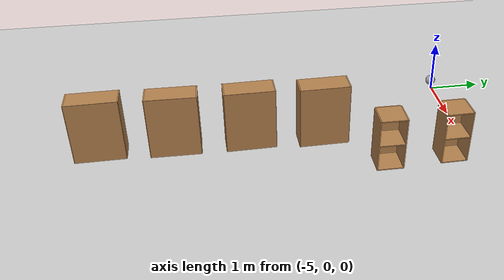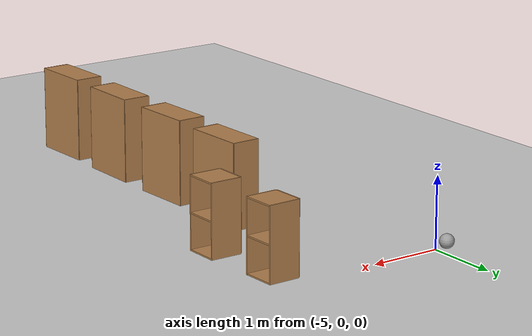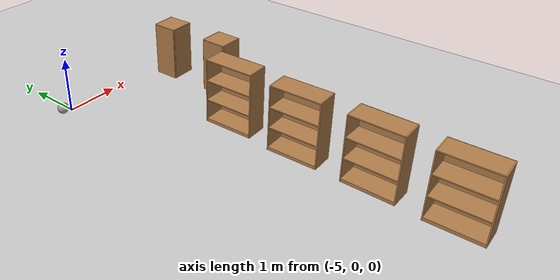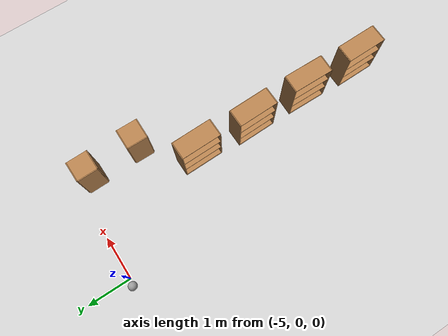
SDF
<sdf version="1.6">
 <world name="default">
  <model name="ground_plane">
   <static>1</static>
   <link name="link">
    <collision name="collision">
     <geometry><plane><normal>0 0 1</normal><size>100 100</size></plane></geometry>
     <surface>
      <contact><collide_bitmask>65535</collide_bitmask></contact>
      <friction><ode><mu>100</mu><mu2>50</mu2></ode></friction>
     </surface>
    </collision>
    <visual name="visual">
     <cast_shadows>0</cast_shadows>
     <geometry><plane><normal>0 0 1</normal><size>100 100</size></plane></geometry>
     <material>
      <script><uri>file://media/materials/scripts/gazebo.material</uri><name>Gazebo/Grey</name></script>
     </material>
    </visual>
   </link>
  </model>
  <model name="cabinet">
   <static>1</static>
   <link name="cabinet_bottom_plate">
    <inertial>
     <pose>0 0 -1 0 -0 0</pose>
     <inertia><ixx>2.05</ixx><ixy>0</ixy><ixz>0</ixz><iyy>2.05</iyy><iyz>0</iyz><izz>2.05</izz></inertia>
     <mass>25</mass>
    </inertial>
    <collision name="cabinet_bottom_plate_geom">
     <pose>0 0 0.01 0 -0 0</pose>
     <geometry><box><size>0.45 0.45 0.02</size></box></geometry>
    </collision>
    <visual name="cabinet_bottom_plate_geom_visual">
     <pose>0 0 0.01 0 -0 0</pose>
     <geometry><box><size>0.45 0.45 0.02</size></box></geometry>
     <material>
      <script><uri>file://media/materials/scripts/gazebo.material</uri><name>Gazebo/Wood</name></script>
     </material>
    </visual>
    <collision name="cabinet_bottom_plate_geom_cabinet_back_plate">
     <pose>0.235 0 0.51 0 -0 0</pose>
     <geometry><box><size>0.02 0.45 1.02</size></box></geometry>
    </collision>
    <visual name="cabinet_bottom_plate_geom_cabinet_back_plate_visual">
     <pose>0.235 0 0.51 0 -0 0</pose>
     <geometry><box><size>0.02 0.45 1.02</size></box></geometry>
     <material>
      <script><uri>file://media/materials/scripts/gazebo.material</uri><name>Gazebo/Wood</name></script>
     </material>
    </visual>
    <collision name="cabinet_bottom_plate_geom_cabinet_left_plate">
     <pose>0 0.235 0.51 0 -0 0</pose>
     <geometry><box><size>0.45 0.02 1.02</size></box></geometry>
    </collision>
    <visual name="cabinet_bottom_plate_geom_cabinet_left_plate_visual">
     <pose>0 0.235 0.51 0 -0 0</pose>
     <geometry><box><size>0.45 0.02 1.02</size></box></geometry>
     <material>
      <script><uri>file://media/materials/scripts/gazebo.material</uri><name>Gazebo/Wood</name></script>
     </material>
    </visual>
    <collision name="cabinet_bottom_plate_geom_cabinet_middle_plate">
     <pose>0 0 0.51 0 -0 0</pose>
     <geometry><box><size>0.45 0.45 0.02</size></box></geometry>
    </collision>
    <visual name="cabinet_bottom_plate_geom_cabinet_middle_plate_visual">
     <pose>0 0 0.51 0 -0 0</pose>
     <geometry><box><size>0.45 0.45 0.02</size></box></geometry>
     <material>
      <script><uri>file://media/materials/scripts/gazebo.material</uri><name>Gazebo/Wood</name></script>
     </material>
    </visual>
    <collision name="cabinet_bottom_plate_geom_cabinet_right_plate">
     <pose>0 -0.235 0.51 0 -0 0</pose>
     <geometry><box><size>0.45 0.02 1.02</size></box></geometry>
    </collision>
    <visual name="cabinet_bottom_plate_geom_cabinet_right_plate_visual">
     <pose>0 -0.235 0.51 0 -0 0</pose>
     <geometry><box><size>0.45 0.02 1.02</size></box></geometry>
     <material>
      <script><uri>file://media/materials/scripts/gazebo.material</uri><name>Gazebo/Wood</name></script>
     </material>
    </visual>
    <collision name="cabinet_bottom_plate_geom_cabinet_top_plate">
     <pose>0 0 1.01 0 -0 0</pose>
     <geometry><box><size>0.45 0.45 0.02</size></box></geometry>
    </collision>
    <visual name="cabinet_bottom_plate_geom_cabinet_top_plate_visual">
     <pose>0 0 1.01 0 -0 0</pose>
     <geometry><box><size>0.45 0.45 0.02</size></box></geometry>
     <material>
      <script><uri>file://media/materials/scripts/gazebo.material</uri><name>Gazebo/Wood</name></script>
     </material>
    </visual>
   </link>
   <pose>-2.66725 -1.57685 0 0 -0 3.13621</pose>
  </model>
  <model name="cabinet_0">
   <static>1</static>
   <link name="cabinet_bottom_plate">
    <inertial>
     <pose>0 0 -1 0 -0 0</pose>
     <inertia><ixx>2.05</ixx><ixy>0</ixy><ixz>0</ixz><iyy>2.05</iyy><iyz>0</iyz><izz>2.05</izz></inertia>
     <mass>25</mass>
    </inertial>
    <collision name="cabinet_bottom_plate_geom">
     <pose>0 0 0.01 0 -0 0</pose>
     <geometry><box><size>0.45 0.45 0.02</size></box></geometry>
    </collision>
    <visual name="cabinet_bottom_plate_geom_visual">
     <pose>0 0 0.01 0 -0 0</pose>
     <geometry><box><size>0.45 0.45 0.02</size></box></geometry>
     <material>
      <script><uri>file://media/materials/scripts/gazebo.material</uri><name>Gazebo/Wood</name></script>
     </material>
    </visual>
    <collision name="cabinet_bottom_plate_geom_cabinet_back_plate">
     <pose>0.235 0 0.51 0 -0 0</pose>
     <geometry><box><size>0.02 0.45 1.02</size></box></geometry>
    </collision>
    <visual name="cabinet_bottom_plate_geom_cabinet_back_plate_visual">
     <pose>0.235 0 0.51 0 -0 0</pose>
     <geometry><box><size>0.02 0.45 1.02</size></box></geometry>
     <material>
      <script><uri>file://media/materials/scripts/gazebo.material</uri><name>Gazebo/Wood</name></script>
     </material>
    </visual>
    <collision name="cabinet_bottom_plate_geom_cabinet_left_plate">
     <pose>0 0.235 0.51 0 -0 0</pose>
     <geometry><box><size>0.45 0.02 1.02</size></box></geometry>
    </collision>
    <visual name="cabinet_bottom_plate_geom_cabinet_left_plate_visual">
     <pose>0 0.235 0.51 0 -0 0</pose>
     <geometry><box><size>0.45 0.02 1.02</size></box></geometry>
     <material>
      <script><uri>file://media/materials/scripts/gazebo.material</uri><name>Gazebo/Wood</name></script>
     </material>
    </visual>
    <collision name="cabinet_bottom_plate_geom_cabinet_middle_plate">
     <pose>0 0 0.51 0 -0 0</pose>
     <geometry><box><size>0.45 0.45 0.02</size></box></geometry>
    </collision>
    <visual name="cabinet_bottom_plate_geom_cabinet_middle_plate_visual">
     <pose>0 0 0.51 0 -0 0</pose>
     <geometry><box><size>0.45 0.45 0.02</size></box></geometry>
     <material>
      <script><uri>file://media/materials/scripts/gazebo.material</uri><name>Gazebo/Wood</name></script>
     </material>
    </visual>
    <collision name="cabinet_bottom_plate_geom_cabinet_right_plate">
     <pose>0 -0.235 0.51 0 -0 0</pose>
     <geometry><box><size>0.45 0.02 1.02</size></box></geometry>
    </collision>
    <visual name="cabinet_bottom_plate_geom_cabinet_right_plate_visual">
     <pose>0 -0.235 0.51 0 -0 0</pose>
     <geometry><box><size>0.45 0.02 1.02</size></box></geometry>
     <material>
      <script><uri>file://media/materials/scripts/gazebo.material</uri><name>Gazebo/Wood</name></script>
     </material>
    </visual>
    <collision name="cabinet_bottom_plate_geom_cabinet_top_plate">
     <pose>0 0 1.01 0 -0 0</pose>
     <geometry><box><size>0.45 0.45 0.02</size></box></geometry>
    </collision>
    <visual name="cabinet_bottom_plate_geom_cabinet_top_plate_visual">
     <pose>0 0 1.01 0 -0 0</pose>
     <geometry><box><size>0.45 0.45 0.02</size></box></geometry>
     <material>
      <script><uri>file://media/materials/scripts/gazebo.material</uri><name>Gazebo/Wood</name></script>
     </material>
    </visual>
   </link>
   <pose>-2.71114 -0.407385 0 0 0 -3.12251</pose>
  </model>
  <model name="bookshelf_clone_12">
   <static>1</static>
   <link name="link">
    <inertial><mass>1</mass></inertial>
    <collision name="back">
     <pose>0 0.005 0.6 0 -0 0</pose>
     <geometry><box><size>0.9 0.01 1.2</size></box></geometry>
    </collision>
    <visual name="visual1">
     <pose>0 0.005 0.6 0 -0 0</pose>
     <geometry><box><size>0.9 0.01 1.2</size></box></geometry>
     <material>
      <script><uri>file://media/materials/scripts/gazebo.material</uri><name>Gazebo/Wood</name></script>
     </material>
    </visual>
    <collision name="left_side">
     <pose>0.45 -0.195 0.6 0 -0 0</pose>
     <geometry><box><size>0.02 0.4 1.2</size></box></geometry>
    </collision>
    <visual name="visual2">
     <pose>0.45 -0.195 0.6 0 -0 0</pose>
     <geometry><box><size>0.02 0.4 1.2</size></box></geometry>
     <material>
      <script><uri>file://media/materials/scripts/gazebo.material</uri><name>Gazebo/Wood</name></script>
     </material>
    </visual>
    <collision name="right_side">
     <pose>-0.45 -0.195 0.6 0 -0 0</pose>
     <geometry><box><size>0.02 0.4 1.2</size></box></geometry>
    </collision>
    <visual name="visual3">
     <pose>-0.45 -0.195 0.6 0 -0 0</pose>
     <geometry><box><size>0.02 0.4 1.2</size></box></geometry>
     <material>
      <script><uri>file://media/materials/scripts/gazebo.material</uri><name>Gazebo/Wood</name></script>
     </material>
    </visual>
    <collision name="bottom">
     <pose>0 -0.195 0.03 0 -0 0</pose>
     <geometry><box><size>0.88 0.4 0.06</size></box></geometry>
    </collision>
    <visual name="visual4">
     <pose>0 -0.195 0.03 0 -0 0</pose>
     <geometry><box><size>0.88 0.4 0.06</size></box></geometry>
     <material>
      <script><uri>file://media/materials/scripts/gazebo.material</uri><name>Gazebo/Wood</name></script>
     </material>
    </visual>
    <collision name="top">
     <pose>0 -0.195 1.19 0 -0 0</pose>
     <geometry><box><size>0.88 0.4 0.02</size></box></geometry>
    </collision>
    <visual name="visual5">
     <pose>0 -0.195 1.19 0 -0 0</pose>
     <geometry><box><size>0.88 0.4 0.02</size></box></geometry>
     <material>
      <script><uri>file://media/materials/scripts/gazebo.material</uri><name>Gazebo/Wood</name></script>
     </material>
    </visual>
    <collision name="low_shelf">
     <pose>0 -0.195 0.43 0 -0 0</pose>
     <geometry><box><size>0.88 0.4 0.02</size></box></geometry>
    </collision>
    <visual name="visual6">
     <pose>0 -0.195 0.43 0 -0 0</pose>
     <geometry><box><size>0.88 0.4 0.02</size></box></geometry>
     <material>
      <script><uri>file://media/materials/scripts/gazebo.material</uri><name>Gazebo/Wood</name></script>
     </material>
    </visual>
    <collision name="high_shelf">
     <pose>0 -0.195 0.8 0 -0 0</pose>
     <geometry><box><size>0.88 0.4 0.02</size></box></geometry>
    </collision>
    <visual name="visual7">
     <pose>0 -0.195 0.8 0 -0 0</pose>
     <geometry><box><size>0.88 0.4 0.02</size></box></geometry>
     <material>
      <script><uri>file://media/materials/scripts/gazebo.material</uri><name>Gazebo/Wood</name></script>
     </material>
    </visual>
   </link>
   <pose>-3.4403 -6.60692 0 0 0 -1.55637</pose>
  </model>
  <model name="bookshelf_clone_13">
   <static>1</static>
   <link name="link">
    <inertial><mass>1</mass></inertial>
    <collision name="back">
     <pose>0 0.005 0.6 0 -0 0</pose>
     <geometry><box><size>0.9 0.01 1.2</size></box></geometry>
    </collision>
    <visual name="visual1">
     <pose>0 0.005 0.6 0 -0 0</pose>
     <geometry><box><size>0.9 0.01 1.2</size></box></geometry>
     <material>
      <script><uri>file://media/materials/scripts/gazebo.material</uri><name>Gazebo/Wood</name></script>
     </material>
    </visual>
    <collision name="left_side">
     <pose>0.45 -0.195 0.6 0 -0 0</pose>
     <geometry><box><size>0.02 0.4 1.2</size></box></geometry>
    </collision>
    <visual name="visual2">
     <pose>0.45 -0.195 0.6 0 -0 0</pose>
     <geometry><box><size>0.02 0.4 1.2</size></box></geometry>
     <material>
      <script><uri>file://media/materials/scripts/gazebo.material</uri><name>Gazebo/Wood</name></script>
     </material>
    </visual>
    <collision name="right_side">
     <pose>-0.45 -0.195 0.6 0 -0 0</pose>
     <geometry><box><size>0.02 0.4 1.2</size></box></geometry>
    </collision>
    <visual name="visual3">
     <pose>-0.45 -0.195 0.6 0 -0 0</pose>
     <geometry><box><size>0.02 0.4 1.2</size></box></geometry>
     <material>
      <script><uri>file://media/materials/scripts/gazebo.material</uri><name>Gazebo/Wood</name></script>
     </material>
    </visual>
    <collision name="bottom">
     <pose>0 -0.195 0.03 0 -0 0</pose>
     <geometry><box><size>0.88 0.4 0.06</size></box></geometry>
    </collision>
    <visual name="visual4">
     <pose>0 -0.195 0.03 0 -0 0</pose>
     <geometry><box><size>0.88 0.4 0.06</size></box></geometry>
     <material>
      <script><uri>file://media/materials/scripts/gazebo.material</uri><name>Gazebo/Wood</name></script>
     </material>
    </visual>
    <collision name="top">
     <pose>0 -0.195 1.19 0 -0 0</pose>
     <geometry><box><size>0.88 0.4 0.02</size></box></geometry>
    </collision>
    <visual name="visual5">
     <pose>0 -0.195 1.19 0 -0 0</pose>
     <geometry><box><size>0.88 0.4 0.02</size></box></geometry>
     <material>
      <script><uri>file://media/materials/scripts/gazebo.material</uri><name>Gazebo/Wood</name></script>
     </material>
    </visual>
    <collision name="low_shelf">
     <pose>0 -0.195 0.43 0 -0 0</pose>
     <geometry><box><size>0.88 0.4 0.02</size></box></geometry>
    </collision>
    <visual name="visual6">
     <pose>0 -0.195 0.43 0 -0 0</pose>
     <geometry><box><size>0.88 0.4 0.02</size></box></geometry>
     <material>
      <script><uri>file://media/materials/scripts/gazebo.material</uri><name>Gazebo/Wood</name></script>
     </material>
    </visual>
    <collision name="high_shelf">
     <pose>0 -0.195 0.8 0 -0 0</pose>
     <geometry><box><size>0.88 0.4 0.02</size></box></geometry>
    </collision>
    <visual name="visual7">
     <pose>0 -0.195 0.8 0 -0 0</pose>
     <geometry><box><size>0.88 0.4 0.02</size></box></geometry>
     <material>
      <script><uri>file://media/materials/scripts/gazebo.material</uri><name>Gazebo/Wood</name></script>
     </material>
    </visual>
   </link>
   <pose>-3.4011 -5.27808 0 0 0 -1.58075</pose>
  </model>
  <model name="bookshelf_clone_14">
   <static>1</static>
   <link name="link">
    <inertial><mass>1</mass></inertial>
    <collision name="back">
     <pose>0 0.005 0.6 0 -0 0</pose>
     <geometry><box><size>0.9 0.01 1.2</size></box></geometry>
    </collision>
    <visual name="visual1">
     <pose>0 0.005 0.6 0 -0 0</pose>
     <geometry><box><size>0.9 0.01 1.2</size></box></geometry>
     <material>
      <script><uri>file://media/materials/scripts/gazebo.material</uri><name>Gazebo/Wood</name></script>
     </material>
    </visual>
    <collision name="left_side">
     <pose>0.45 -0.195 0.6 0 -0 0</pose>
     <geometry><box><size>0.02 0.4 1.2</size></box></geometry>
    </collision>
    <visual name="visual2">
     <pose>0.45 -0.195 0.6 0 -0 0</pose>
     <geometry><box><size>0.02 0.4 1.2</size></box></geometry>
     <material>
      <script><uri>file://media/materials/scripts/gazebo.material</uri><name>Gazebo/Wood</name></script>
     </material>
    </visual>
    <collision name="right_side">
     <pose>-0.45 -0.195 0.6 0 -0 0</pose>
     <geometry><box><size>0.02 0.4 1.2</size></box></geometry>
    </collision>
    <visual name="visual3">
     <pose>-0.45 -0.195 0.6 0 -0 0</pose>
     <geometry><box><size>0.02 0.4 1.2</size></box></geometry>
     <material>
      <script><uri>file://media/materials/scripts/gazebo.material</uri><name>Gazebo/Wood</name></script>
     </material>
    </visual>
    <collision name="bottom">
     <pose>0 -0.195 0.03 0 -0 0</pose>
     <geometry><box><size>0.88 0.4 0.06</size></box></geometry>
    </collision>
    <visual name="visual4">
     <pose>0 -0.195 0.03 0 -0 0</pose>
     <geometry><box><size>0.88 0.4 0.06</size></box></geometry>
     <material>
      <script><uri>file://media/materials/scripts/gazebo.material</uri><name>Gazebo/Wood</name></script>
     </material>
    </visual>
    <collision name="top">
     <pose>0 -0.195 1.19 0 -0 0</pose>
     <geometry><box><size>0.88 0.4 0.02</size></box></geometry>
    </collision>
    <visual name="visual5">
     <pose>0 -0.195 1.19 0 -0 0</pose>
     <geometry><box><size>0.88 0.4 0.02</size></box></geometry>
     <material>
      <script><uri>file://media/materials/scripts/gazebo.material</uri><name>Gazebo/Wood</name></script>
     </material>
    </visual>
    <collision name="low_shelf">
     <pose>0 -0.195 0.43 0 -0 0</pose>
     <geometry><box><size>0.88 0.4 0.02</size></box></geometry>
    </collision>
    <visual name="visual6">
     <pose>0 -0.195 0.43 0 -0 0</pose>
     <geometry><box><size>0.88 0.4 0.02</size></box></geometry>
     <material>
      <script><uri>file://media/materials/scripts/gazebo.material</uri><name>Gazebo/Wood</name></script>
     </material>
    </visual>
    <collision name="high_shelf">
     <pose>0 -0.195 0.8 0 -0 0</pose>
     <geometry><box><size>0.88 0.4 0.02</size></box></geometry>
    </collision>
    <visual name="visual7">
     <pose>0 -0.195 0.8 0 -0 0</pose>
     <geometry><box><size>0.88 0.4 0.02</size></box></geometry>
     <material>
      <script><uri>file://media/materials/scripts/gazebo.material</uri><name>Gazebo/Wood</name></script>
     </material>
    </visual>
   </link>
   <pose>-3.3953 -3.91707 0 0 0 -1.5487</pose>
  </model>
  <model name="bookshelf_clone_15">
   <static>1</static>
   <link name="link">
    <inertial><mass>1</mass></inertial>
    <collision name="back">
     <pose>0 0.005 0.6 0 -0 0</pose>
     <geometry><box><size>0.9 0.01 1.2</size></box></geometry>
    </collision>
    <visual name="visual1">
     <pose>0 0.005 0.6 0 -0 0</pose>
     <geometry><box><size>0.9 0.01 1.2</size></box></geometry>
     <material>
      <script><uri>file://media/materials/scripts/gazebo.material</uri><name>Gazebo/Wood</name></script>
     </material>
    </visual>
    <collision name="left_side">
     <pose>0.45 -0.195 0.6 0 -0 0</pose>
     <geometry><box><size>0.02 0.4 1.2</size></box></geometry>
    </collision>
    <visual name="visual2">
     <pose>0.45 -0.195 0.6 0 -0 0</pose>
     <geometry><box><size>0.02 0.4 1.2</size></box></geometry>
     <material>
      <script><uri>file://media/materials/scripts/gazebo.material</uri><name>Gazebo/Wood</name></script>
     </material>
    </visual>
    <collision name="right_side">
     <pose>-0.45 -0.195 0.6 0 -0 0</pose>
     <geometry><box><size>0.02 0.4 1.2</size></box></geometry>
    </collision>
    <visual name="visual3">
     <pose>-0.45 -0.195 0.6 0 -0 0</pose>
     <geometry><box><size>0.02 0.4 1.2</size></box></geometry>
     <material>
      <script><uri>file://media/materials/scripts/gazebo.material</uri><name>Gazebo/Wood</name></script>
     </material>
    </visual>
    <collision name="bottom">
     <pose>0 -0.195 0.03 0 -0 0</pose>
     <geometry><box><size>0.88 0.4 0.06</size></box></geometry>
    </collision>
    <visual name="visual4">
     <pose>0 -0.195 0.03 0 -0 0</pose>
     <geometry><box><size>0.88 0.4 0.06</size></box></geometry>
     <material>
      <script><uri>file://media/materials/scripts/gazebo.material</uri><name>Gazebo/Wood</name></script>
     </material>
    </visual>
    <collision name="top">
     <pose>0 -0.195 1.19 0 -0 0</pose>
     <geometry><box><size>0.88 0.4 0.02</size></box></geometry>
    </collision>
    <visual name="visual5">
     <pose>0 -0.195 1.19 0 -0 0</pose>
     <geometry><box><size>0.88 0.4 0.02</size></box></geometry>
     <material>
      <script><uri>file://media/materials/scripts/gazebo.material</uri><name>Gazebo/Wood</name></script>
     </material>
    </visual>
    <collision name="low_shelf">
     <pose>0 -0.195 0.43 0 -0 0</pose>
     <geometry><box><size>0.88 0.4 0.02</size></box></geometry>
    </collision>
    <visual name="visual6">
     <pose>0 -0.195 0.43 0 -0 0</pose>
     <geometry><box><size>0.88 0.4 0.02</size></box></geometry>
     <material>
      <script><uri>file://media/materials/scripts/gazebo.material</uri><name>Gazebo/Wood</name></script>
     </material>
    </visual>
    <collision name="high_shelf">
     <pose>0 -0.195 0.8 0 -0 0</pose>
     <geometry><box><size>0.88 0.4 0.02</size></box></geometry>
    </collision>
    <visual name="visual7">
     <pose>0 -0.195 0.8 0 -0 0</pose>
     <geometry><box><size>0.88 0.4 0.02</size></box></geometry>
     <material>
      <script><uri>file://media/materials/scripts/gazebo.material</uri><name>Gazebo/Wood</name></script>
     </material>
    </visual>
   </link>
   <pose>-3.34459 -2.58556 0 0 0 -1.55186</pose>
  </model>
  <model name="my_ball">
   <link name="link_0">
    <inertial>
     <mass>1</mass>
     <inertia><ixx>0.1</ixx><ixy>0</ixy><ixz>0</ixz><iyy>0.1</iyy><iyz>0</iyz><izz>0.1</izz></inertia>
    </inertial>
    <visual name="visual">
     <geometry><sphere><radius>0.1</radius></sphere></geometry>
     <material>
      <lighting>1</lighting>
      <script><uri>file://media/materials/scripts/gazebo.material</uri><name>Gazebo/Grey</name></script>
      <shader type="pixel"><normal_map>__default__</normal_map></shader>
      <ambient>1 1 1 1</ambient>
      <diffuse>1 1 1 1</diffuse>
      <specular>1 1 1 1</specular>
      <emissive>1 1 1 1</emissive>
     </material>
    </visual>
    <collision name="collision">
     <geometry><sphere><radius>0.1</radius></sphere></geometry>
     <surface>
      <friction>
       <ode><mu>1</mu><mu2>1</mu2><fdir1>0 0 0</fdir1><slip1>0</slip1><slip2>0</slip2></ode>
       <torsional>
        <coefficient>1</coefficient>
        <patch_radius>0</patch_radius>
        <surface_radius>0</surface_radius>
        <use_patch_radius>1</use_patch_radius>
        <ode><slip>0</slip></ode>
       </torsional>
      </friction>
      <bounce><restitution_coefficient>0</restitution_coefficient><threshold>1e+06</threshold></bounce>
      <contact>
       <collide_without_contact>0</collide_without_contact>
       <collide_without_contact_bitmask>1</collide_without_contact_bitmask>
       <collide_bitmask>1</collide_bitmask>
       <ode>
        <soft_cfm>0</soft_cfm>
        <soft_erp>0.2</soft_erp>
        <kp>1e+13</kp>
        <kd>1</kd>
        <max_vel>0.01</max_vel>
        <min_depth>0</min_depth>
       </ode>
       <bullet>
        <split_impulse>1</split_impulse>
        <split_impulse_penetration_threshold>-0.01</split_impulse_penetration_threshold>
        <soft_cfm>0</soft_cfm>
        <soft_erp>0.2</soft_erp>
        <kp>1e+13</kp>
        <kd>1</kd>
       </bullet>
      </contact>
     </surface>
    </collision>
   </link>
   <static>0</static>
   <pose>-5.15713 0.030562 0.1 0 -0 0</pose>
  </model>
 </world>
</sdf>
